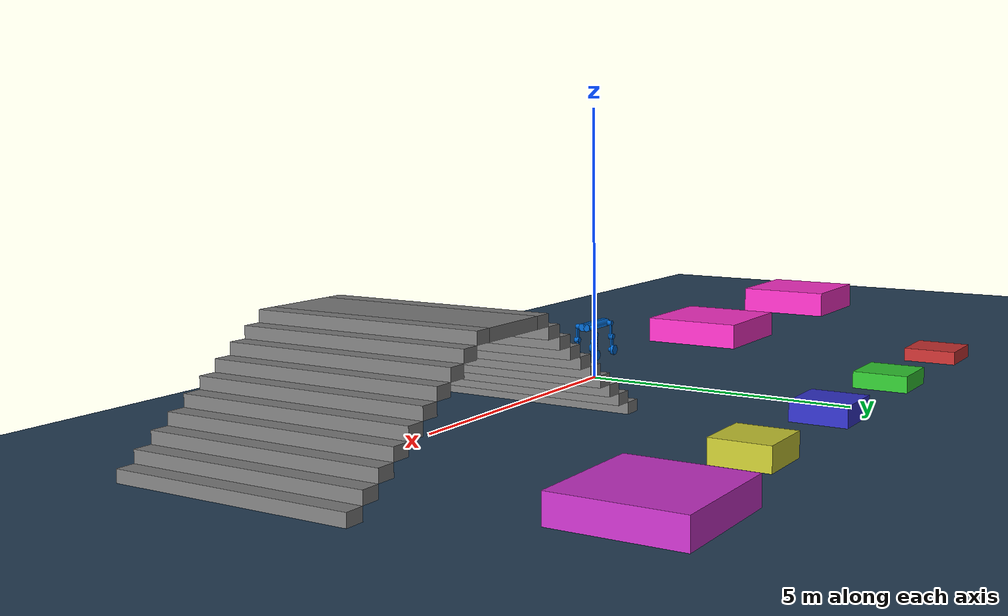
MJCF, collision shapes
<mujoco model="m20 scene">
  <include file="M20.xml"/>

  <statistic center="0 0 0.1" extent="0.8"/>

  <visual>
    <headlight diffuse="0.6 0.6 0.6" ambient="0.3 0.3 0.3" specular="0 0 0"/>
    <rgba haze="0.15 0.25 0.35 1"/>
    <global azimuth="-130" elevation="-20"/>
  </visual>

<asset>

  <!-- 2 纹理 / 材料 -->
  <texture type="skybox" builtin="gradient" rgb1="0.3 0.5 0.7" rgb2="0 0 0" width="512" height="3072"/>
  <texture type="2d" name="groundplane" builtin="checker" mark="edge" rgb1="0.2 0.3 0.4" rgb2="0.1 0.2 0.3" markrgb="0.8 0.8 0.8" width="300" height="300"/>
  <material name="groundplane" texture="groundplane" texuniform="true" texrepeat="5 5" reflectance="0.2"/>

  <texture type="2d" name="rough_tex" builtin="checker" rgb1="0.7 0.7 0.7" rgb2="0.3 0.3 0.3" width="100" height="100"/>
  <material name="rough_mat" texture="rough_tex" texrepeat="10 10"/>
</asset>

  <worldbody>
    <light pos="0 0 1.5" dir="0 0 -1" directional="true"/>
    <geom name="floor" size="0 0 0.05" type="plane" material="groundplane"/>

<!-- 1~10 级上台阶（每级高 0.17 m，总高 1.7 m） -->

<!-- 20cm -->
<geom pos="2.15 0 0.1" type="box" size="0.15 2 0.1" quat="1 0 0 0"/>
<geom pos="2.45 0 0.3" type="box" size="0.15 2 0.1" quat="1 0 0 0"/>
<geom pos="2.75 0 0.5" type="box" size="0.15 2 0.1" quat="1 0 0 0"/>
<geom pos="3.05 0 0.7" type="box" size="0.15 2 0.1" quat="1 0 0 0"/>
<geom pos="3.35 0 0.9" type="box" size="0.15 2 0.1" quat="1 0 0 0"/>
<geom pos="3.65 0 1.1" type="box" size="0.15 2 0.1" quat="1 0 0 0"/>
<geom pos="3.95 0 1.3" type="box" size="0.15 2 0.1" quat="1 0 0 0"/>
<geom pos="4.25 0 1.5" type="box" size="0.15 2 0.1" quat="1 0 0 0"/>
<geom pos="4.55 0 1.7" type="box" size="0.15 2 0.1" quat="1 0 0 0"/>
<geom pos="4.85 0 1.9" type="box" size="0.15 2 0.1" quat="1 0 0 0"/>

<geom pos="5.6 0 1.9" type="box" size="0.6 2 0.1" quat="1 0 0 0"/>

<geom pos="6.35 0 1.9" type="box" size="0.15 2 0.1" quat="1 0 0 0"/>
<geom pos="6.65 0 1.7" type="box" size="0.15 2 0.1" quat="1 0 0 0"/>
<geom pos="6.95 0 1.5" type="box" size="0.15 2 0.1" quat="1 0 0 0"/>
<geom pos="7.25 0 1.3" type="box" size="0.15 2 0.1" quat="1 0 0 0"/>
<geom pos="7.55 0 1.1" type="box" size="0.15 2 0.1" quat="1 0 0 0"/>
<geom pos="7.85 0 0.9" type="box" size="0.15 2 0.1" quat="1 0 0 0"/>
<geom pos="8.15 0 0.7" type="box" size="0.15 2 0.1" quat="1 0 0 0"/>
<geom pos="8.45 0 0.5" type="box" size="0.15 2 0.1" quat="1 0 0 0"/>
<geom pos="8.75 0 0.3" type="box" size="0.15 2 0.1" quat="1 0 0 0"/>
<geom pos="9.05 0 0.1" type="box" size="0.15 2 0.1" quat="1 0 0 0"/>

<body name="box25" pos="-5  5  0.125">
      <geom name="g25" type="box" size="0.5 0.5 0.125" rgba="0.8 0.2 0.2 1"/>
    </body>

    <!-- 箱体 2：高 0.30 m -->
    <body name="box30" pos="-2  5  0.15">
      <geom name="g30" type="box" size="0.5 0.5 0.15" rgba="0.2 0.8 0.2 1"/>
    </body>

    <!-- 箱体 3：高 0.35 m -->
    <body name="box35" pos="1  5  0.175">
      <geom name="g35" type="box" size="0.5 0.5 0.175" rgba="0.2 0.2 0.8 1"/>
    </body>

    <!-- 箱体 4：高 0.40 m -->
    <body name="box40" pos=" 4  5  0.2">
      <geom name="g40" type="box" size="0.5 0.5 0.2" rgba="0.8 0.8 0.2 1"/>
    </body>

    <!-- 箱体 5：高 0.45 m -->
    <body name="box45" pos=" 7  5  0.225">
      <geom name="g45" type="box" size="1 1 0.225" rgba="0.8 0.2 0.8 1"/>
    </body>

    <!-- 箱体 5：高 0.45 m -->
    <body name="box50" pos=" -5  0  0.25">
      <geom name="g50" type="box" size="1 1 0.25" rgba="1.0 0.2 0.8 1"/>
    </body>

        <!-- 箱体 5：高 0.45 m -->
    <body name="box55" pos=" -10  0  0.275">
      <geom name="g55" type="box" size="1 1 0.275" rgba="1.0 0.2 0.8 1"/>
    </body>
  </worldbody>
</mujoco>

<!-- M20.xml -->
<mujoco model="M20">

    <default>
        <default class="robot">
            <default class="motor">
                <joint/>
                <motor/>
            </default>
            <default class="visual">
                <geom material="default_material" contype="0" conaffinity="0" group="2"/>
            </default>
            <default class="collision">
                <geom material="collision_material" condim="3" contype="1" conaffinity="1" solref="0.005 1"
                      friction="1 0.01 0.001" density="0" group="1"/>
            </default>
        </default>
    </default>

    <compiler angle="radian" meshdir="../meshes/"/>
    <compiler autolimits="true"/>

    <asset>
        <material name="default_material" rgba="0.7 0.7 0.7 1"/>
        <material name="collision_material" rgba="0.0 0.4 0.8 0.2"/>
        <mesh name="base_link" file="base_link.STL"/>
        <mesh name="fl_hipx" file="fl_hipx.STL"/>
        <mesh name="fl_hipy" file="fl_hipy.STL"/>
        <mesh name="fl_knee" file="fl_knee.STL"/>
        <mesh name="fl_wheel" file="fl_wheel.STL"/>
        <mesh name="fr_hipx" file="fr_hipx.STL"/>
        <mesh name="fr_hipy" file="fr_hipy.STL"/>
        <mesh name="fr_knee" file="fr_knee.STL"/>
        <mesh name="fr_wheel" file="fr_wheel.STL"/>
        <mesh name="hl_hipx" file="hl_hipx.STL"/>
        <mesh name="hl_hipy" file="hl_hipy.STL"/>
        <mesh name="hl_knee" file="hl_knee.STL"/>
        <mesh name="hl_wheel" file="hl_wheel.STL"/>
        <mesh name="hr_hipx" file="hr_hipx.STL"/>
        <mesh name="hr_hipy" file="hr_hipy.STL"/>
        <mesh name="hr_knee" file="hr_knee.STL"/>
        <mesh name="hr_wheel" file="hr_wheel.STL"/>
        <texture name="texplane" type="2d" builtin="checker" rgb1=".2 .3 .4" rgb2=".1 0.15 0.2"
                 width="512" height="512"/>
        <material name='MatPlane' reflectance='0.3' texture="texplane" texrepeat="1 1" texuniform="true"/>
    </asset>

    <worldbody>
        <!-- 灯光 -->

        <body name="base_link" pos="0 0. 1." quat="1 0 0 0" childclass="robot">
            <freejoint name="floating_base"/>
            <inertial pos="0.00355105878308153 0.0016507579200937 -0.00346462146571654"
                      quat="1 0 0 0"
                      mass="15.882" diaginertia="0.087919 0.533522 0.563492"/>

            <site name="imu_site" pos="0.0632 -0.0268 0.0435" size="0.005" rgba="1 0 0 1"/>
            <site name="base_site" pos="0 0 0" quat="1 0 0 0"/>

            <geom type="mesh" mesh="base_link" class="visual"/>
            <geom size="0.375 0.045 0.07" type="box" class="collision"/>
            <geom size="0.07 0.375" pos="0 0.045 0" quat="0.707107 0 0.707107 0" type="cylinder" class="collision"/>
            <geom size="0.07 0.375" pos="0 -0.045 0" quat="0.707107 0 0.707107 0" type="cylinder" class="collision"/>

            <body name="fl_hipx" pos="0.3141 0.0685 0">
                <inertial pos="-0.0111893 0.00891693 0.000405666" quat="0.581628 0.481707 0.465607 0.461387"
                          mass="0.259964"
                          diaginertia="0.000374402 0.000286289 0.000179309"/>
                <joint name="fl_hipx_joint" pos="0 0 0" axis="-1 0 0" range="-0.436 0.611"
                       actuatorfrcrange="-76.4 76.4"/>
                <geom type="mesh" mesh="fl_hipx" class="visual"/>
                <geom size="0.048 0.07" pos="0 0.055 0" quat="0.707107 0.707107 0 0" type="cylinder" class="collision"/>
                <body name="fl_hipy">
                    <inertial pos="-0.00199375 0.098439 -0.130664" quat="0.6754 -0.0565887 0.0622156 0.73264"
                              mass="2.618"
                              diaginertia="0.0410181 0.0408067 0.00297328"/>
                    <joint name="fl_hipy_joint" pos="0 0 0" axis="0 -1 0" range="-2.286 2.583"
                           actuatorfrcrange="-76.4 76.4"/>
                    <geom type="mesh" mesh="fl_hipy" class="visual"/>
                    <geom size="0.035 0.01 0.125" pos="-0.01 0.11 -0.125" type="box" class="collision"/>
                    <geom size="0.05 0.045" pos="0 0.11 -0.25" quat="0.707107 0.707107 0 0" type="cylinder"
                          class="collision"/>
                    <body name="fl_knee" pos="0 0.0984 -0.25">
                        <inertial pos="0.00341917 0.00269124 -0.181265" quat="0.633405 -0.0508555 0.0475887 0.77068"
                                  mass="1.145" diaginertia="0.0121304 0.0117245 0.000948105"/>
                        <joint name="fl_knee_joint" pos="0 0 0" axis="0 -1 0" range="-2.809 2.792"
                               actuatorfrcrange="-76.4 76.4"/>
                        <geom type="mesh" mesh="fl_knee" class="visual"/>
                        <geom size="0.03 0.0125 0.125" pos="0.015 -0.015 -0.125" type="box" class="collision"/>
                        <geom size="0.04 0.05" pos="0 0.02 -0.25" quat="0.707107 0.707107 0 0" type="cylinder"
                              class="collision"/>
                        <body name="fl_wheel" pos="0 0.059676 -0.25">
                            <inertial pos="-3.11398e-07 0.000279002 5.70329e-07" quat="0.707107 0 0 0.707107"
                                      mass="0.638"
                                      diaginertia="0.002853 0.001535 0.001535"/>
                            <joint name="fl_wheel_joint" pos="0 0 0" axis="0 -1 0" actuatorfrcrange="-21.6 21.6"/>
                            <geom type="mesh" mesh="fl_wheel" class="visual"/>
                            <geom size="0.09 0.027" quat="0.707107 0.707107 0 0" type="cylinder" class="collision"/>
                        </body>
                    </body>
                </body>
            </body>
            <body name="fr_hipx" pos="0.3141 -0.0685 0">
                <inertial pos="-0.0110901 -0.00875035 0.000521421" quat="0.461387 0.465607 0.481707 0.581628"
                          mass="0.259964" diaginertia="0.000374402 0.000286289 0.000179309"/>
                <joint name="fr_hipx_joint" pos="0 0 0" axis="-1 0 0" range="-0.611 0.436"
                       actuatorfrcrange="-76.4 76.4"/>
                <geom type="mesh" mesh="fr_hipx" class="visual"/>
                <geom size="0.048 0.07" pos="0 -0.055 0" quat="0.707107 0.707107 0 0" type="cylinder"
                      class="collision"/>
                <body name="fr_hipy">
                    <inertial pos="-0.00229992 -0.0989709 -0.130925" quat="0.6964 0.0586688 -0.0587886 0.712831"
                              mass="2.618" diaginertia="0.0407542 0.040538 0.00301281"/>
                    <joint name="fr_hipy_joint" pos="0 0 0" axis="0 -1 0" range="-2.286 2.583"
                           actuatorfrcrange="-76.4 76.4"/>
                    <geom type="mesh" mesh="fr_hipy" class="visual"/>
                    <geom size="0.035 0.01 0.125" pos="-0.01 -0.11 -0.125" type="box" class="collision"/>
                    <geom size="0.05 0.045" pos="0 -0.11 -0.25" quat="0.707107 0.707107 0 0" type="cylinder"
                          class="collision"/>
                    <body name="fr_knee" pos="0 -0.0984 -0.25">
                        <inertial pos="0.00354945 -0.00247884 -0.180089" quat="0.769194 0.0472982 -0.0504711 0.635261"
                                  mass="1.145" diaginertia="0.0122564 0.0118448 0.000951718"/>
                        <joint name="fr_knee_joint" pos="0 0 0" axis="0 -1 0" range="-2.809 2.792"
                               actuatorfrcrange="-76.4 76.4"/>
                        <geom type="mesh" mesh="fr_knee" class="visual"/>
                        <geom size="0.03 0.0125 0.125" pos="0.015 0.015 -0.125" type="box" class="collision"/>
                        <geom size="0.04 0.05" pos="0 -0.02 -0.25" quat="0.707107 0.707107 0 0" type="cylinder"
                              class="collision"/>
                        <body name="fr_wheel" pos="0 -0.059676 -0.25">
                            <inertial pos="-6.47327e-07 -0.000279012 -4.6242e-08" quat="0.707107 0 0 0.707107"
                                      mass="0.638"
                                      diaginertia="0.002853 0.001535 0.001535"/>
                            <joint name="fr_wheel_joint" pos="0 0 0" axis="0 -1 0" actuatorfrcrange="-21.6 21.6"/>
                            <geom type="mesh" mesh="fr_wheel" class="visual"/>
                            <geom size="0.09 0.027" quat="0.707107 0.707107 0 0" type="cylinder" class="collision"/>
                        </body>
                    </body>
                </body>
            </body>
            <body name="hl_hipx" pos="-0.3141 0.0685 0">
                <inertial pos="0.0110901 0.00875014 0.000524884" quat="0.465607 0.461387 0.581628 0.481707"
                          mass="0.259964"
                          diaginertia="0.000374402 0.000286289 0.000179309"/>
                <joint name="hl_hipx_joint" pos="0 0 0" axis="-1 0 0" range="-0.436 0.611"
                       actuatorfrcrange="-76.4 76.4"/>
                <geom type="mesh" mesh="hl_hipx" class="visual"/>
                <geom size="0.048 0.07" pos="0 0.055 0" quat="0.707107 0.707107 0 0" type="cylinder" class="collision"/>
                <body name="hl_hipy">
                    <inertial pos="0.00204343 0.0990227 -0.130697" quat="0.750359 -0.0628584 0.0546506 0.655761"
                              mass="2.618" diaginertia="0.0408376 0.0406211 0.00299727"/>
                    <joint name="hl_hipy_joint" pos="0 0 0" axis="0 -1 0" range="-2.583 2.286"
                           actuatorfrcrange="-76.4 76.4"/>
                    <geom type="mesh" mesh="hl_hipy" class="visual"/>
                    <geom size="0.035 0.01 0.125" pos="0.01 0.11 -0.125" type="box" class="collision"/>
                    <geom size="0.05 0.045" pos="0 0.11 -0.25" quat="0.707107 0.707107 0 0" type="cylinder"
                          class="collision"/>
                    <body name="hl_knee" pos="0 0.0984 -0.25">
                        <inertial pos="-0.00354945 0.00247885 -0.180089" quat="0.769194 -0.0472982 0.0504711 0.635261"
                                  mass="1.145" diaginertia="0.0122564 0.0118448 0.000951718"/>
                        <joint name="hl_knee_joint" pos="0 0 0" axis="0 -1 0" range="-2.792 2.809"
                               actuatorfrcrange="-76.4 76.4"/>
                        <geom type="mesh" mesh="hl_knee" class="visual"/>
                        <geom size="0.03 0.0125 0.125" pos="-0.015 0.015 -0.125" type="box" class="collision"/>
                        <geom size="0.04 0.05" pos="0 0.02 -0.25" quat="0.707107 0.707107 0 0" type="cylinder"
                              class="collision"/>
                        <body name="hl_wheel" pos="0 0.059676 -0.25">
                            <inertial pos="-6.07889e-07 0.000279009 2.1049e-07" quat="0.707107 0 0 0.707107"
                                      mass="0.638"
                                      diaginertia="0.002853 0.001535 0.001535"/>
                            <joint name="hl_wheel_joint" pos="0 0 0" axis="0 -1 0" actuatorfrcrange="-21.6 21.6"/>
                            <geom type="mesh" mesh="hl_wheel" class="visual"/>
                            <geom size="0.09 0.027" quat="0.707107 0.707107 0 0" type="cylinder" class="collision"/>
                        </body>
                    </body>
                </body>
            </body>
            <body name="hr_hipx" pos="-0.3141 -0.0685 0">
                <inertial pos="0.0110902 -0.00875012 0.000524937" quat="0.481707 0.581628 0.461387 0.465607"
                          mass="0.259964"
                          diaginertia="0.000374402 0.000286289 0.000179309"/>
                <joint name="hr_hipx_joint" pos="0 0 0" axis="-1 0 0" range="-0.611 0.436"
                       actuatorfrcrange="-76.4 76.4"/>
                <geom type="mesh" mesh="hr_hipx" class="visual"/>
                <geom size="0.048 0.07" pos="0 -0.055 0" quat="0.707107 0.707107 0 0" type="cylinder"
                      class="collision"/>
                <body name="hr_hipy">
                    <inertial pos="0.001992 -0.0983704 -0.130561" quat="0.676694 0.0567616 -0.0621797 0.731435"
                              mass="2.618"
                              diaginertia="0.0410109 0.0408028 0.00297526"/>
                    <joint name="hr_hipy_joint" pos="0 0 0" axis="0 -1 0" range="-2.583 2.286"
                           actuatorfrcrange="-76.4 76.4"/>
                    <geom type="mesh" mesh="hr_hipy" class="visual"/>
                    <geom size="0.035 0.01 0.125" pos="0.01 -0.11 -0.125" type="box" class="collision"/>
                    <geom size="0.05 0.045" pos="0 -0.11 -0.25" quat="0.707107 0.707107 0 0" type="cylinder"
                          class="collision"/>
                    <body name="hr_knee" pos="0 -0.0984 -0.25">
                        <inertial pos="-0.00341053 -0.00270202 -0.181287" quat="0.63448 0.050937 -0.0475303 0.769793"
                                  mass="1.145" diaginertia="0.0121352 0.0117289 0.000948904"/>
                        <joint name="hr_knee_joint" pos="0 0 0" axis="0 -1 0" range="-2.792 2.809"
                               actuatorfrcrange="-76.4 76.4"/>
                        <geom type="mesh" mesh="hr_knee" class="visual"/>
                        <geom size="0.03 0.0125 0.125" pos="-0.015 0.015 -0.125" type="box" class="collision"/>
                        <geom size="0.04 0.05" pos="0 -0.02 -0.25" quat="0.707107 0.707107 0 0" type="cylinder"
                              class="collision"/>
                        <body name="hr_wheel" pos="0 -0.059676 -0.25">
                            <inertial pos="6.09746e-07 -0.000279009 2.01314e-07" quat="0.707107 0 0 0.707107"
                                      mass="0.638"
                                      diaginertia="0.002853 0.001535 0.001535"/>
                            <joint name="hr_wheel_joint" pos="0 0 0" axis="0 -1 0" actuatorfrcrange="-21.6 21.6"/>
                            <geom type="mesh" mesh="hr_wheel" class="visual"/>
                            <geom size="0.09 0.027" quat="0.707107 0.707107 0 0" type="cylinder" class="collision"/>
                        </body>
                    </body>
                </body>
            </body>
        </body>
    </worldbody>

    <actuator>
        <motor name="fl_hipx_joint" joint="fl_hipx_joint" ctrllimited="true" ctrlrange="-76.4 76.4" gear="1"/>
        <motor name="fl_hipy_joint" joint="fl_hipy_joint" ctrllimited="true" ctrlrange="-76.4 76.4" gear="1"/>
        <motor name="fl_knee_joint" joint="fl_knee_joint" ctrllimited="true" ctrlrange="-76.4 76.4" gear="1"/>
        <motor name="fl_wheel_joint" joint="fl_wheel_joint" ctrllimited="true" ctrlrange="-21.6 21.6" gear="1"/>
        <motor name="fr_hipx_joint" joint="fr_hipx_joint" ctrllimited="true" ctrlrange="-76.4 76.4" gear="1"/>
        <motor name="fr_hipy_joint" joint="fr_hipy_joint" ctrllimited="true" ctrlrange="-76.4 76.4" gear="1"/>
        <motor name="fr_knee_joint" joint="fr_knee_joint" ctrllimited="true" ctrlrange="-76.4 76.4" gear="1"/>
        <motor name="fr_wheel_joint" joint="fr_wheel_joint" ctrllimited="true" ctrlrange="-21.6 21.6" gear="1"/>
        <motor name="hl_hipx_joint" joint="hl_hipx_joint" ctrllimited="true" ctrlrange="-76.4 76.4" gear="1"/>
        <motor name="hl_hipy_joint" joint="hl_hipy_joint" ctrllimited="true" ctrlrange="-76.4 76.4" gear="1"/>
        <motor name="hl_knee_joint" joint="hl_knee_joint" ctrllimited="true" ctrlrange="-76.4 76.4" gear="1"/>
        <motor name="hl_wheel_joint" joint="hl_wheel_joint" ctrllimited="true" ctrlrange="-21.6 21.6" gear="1"/>
        <motor name="hr_hipx_joint" joint="hr_hipx_joint" ctrllimited="true" ctrlrange="-76.4 76.4" gear="1"/>
        <motor name="hr_hipy_joint" joint="hr_hipy_joint" ctrllimited="true" ctrlrange="-76.4 76.4" gear="1"/>
        <motor name="hr_knee_joint" joint="hr_knee_joint" ctrllimited="true" ctrlrange="-76.4 76.4" gear="1"/>
        <motor name="hr_wheel_joint" joint="hr_wheel_joint" ctrllimited="true" ctrlrange="-21.6 21.6" gear="1"/>
    </actuator>

    <contact>
        <exclude body1="base_link" body2="fl_hipx"/>
        <exclude body1="fl_hipx" body2="fl_hipy"/>
        <exclude body1="fl_hipy" body2="fl_knee"/>
        <exclude body1="fl_knee" body2="fl_wheel"/>

        <exclude body1="base_link" body2="fr_hipx"/>
        <exclude body1="fr_hipx" body2="fr_hipy"/>
        <exclude body1="fr_hipy" body2="fr_knee"/>
        <exclude body1="fr_knee" body2="fr_wheel"/>

        <exclude body1="base_link" body2="hl_hipx"/>
        <exclude body1="hl_hipx" body2="hl_hipy"/>
        <exclude body1="hl_hipy" body2="hl_knee"/>
        <exclude body1="hl_knee" body2="hl_wheel"/>

        <exclude body1="base_link" body2="hr_hipx"/>
        <exclude body1="hr_hipx" body2="hr_hipy"/>
        <exclude body1="hr_hipy" body2="hr_knee"/>
        <exclude body1="hr_knee" body2="hr_wheel"/>

    </contact>

    <sensor>
        <framequat name="base_quat" objtype="site" objname="base_site"/>
        <accelerometer site="imu_site"/>
        <gyro site="imu_site"/>

    </sensor>
</mujoco>
